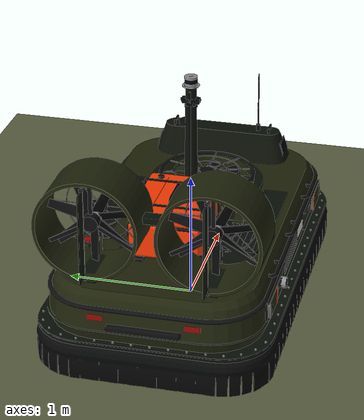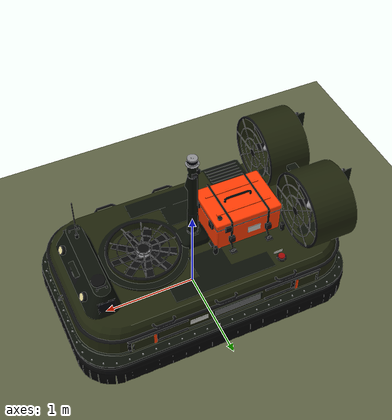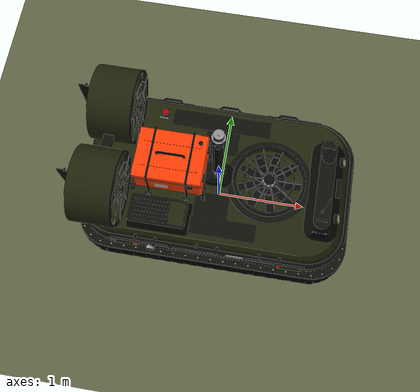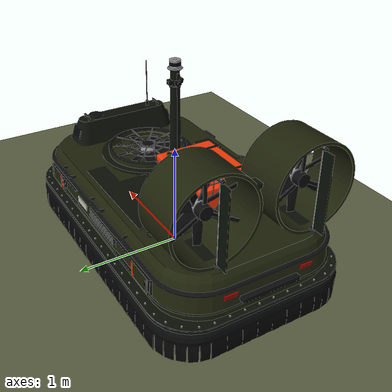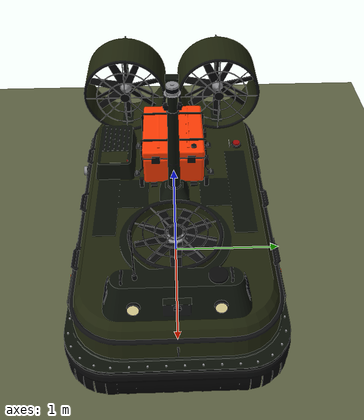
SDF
<?xml version="1.0"?>
<!-- GENERATED by hover_gazebo/scripts/gen_test_worlds_v3.py -->
<sdf version="1.9">
  <world name="v3_hover_test">
    <physics name="1ms" type="dart">
      <max_step_size>0.001</max_step_size>
      <real_time_factor>1.0</real_time_factor>
      <dart><collision_detector>bullet</collision_detector></dart>
    </physics>
    <gravity>0 0 -9.81</gravity>
    <spherical_coordinates>
      <surface_model>EARTH_WGS84</surface_model>
      <latitude_deg>1.4466</latitude_deg><longitude_deg>103.7300</longitude_deg>
      <elevation>0</elevation><heading_deg>0</heading_deg>
    </spherical_coordinates>

    <plugin filename="gz-sim-physics-system" name="gz::sim::systems::Physics"/>
    <plugin filename="gz-sim-user-commands-system" name="gz::sim::systems::UserCommands"/>
    <plugin filename="gz-sim-scene-broadcaster-system" name="gz::sim::systems::SceneBroadcaster"/>
    <plugin filename="gz-sim-imu-system" name="gz::sim::systems::Imu"/>
    <plugin filename="gz-sim-navsat-system" name="gz::sim::systems::NavSat"/>
    <plugin filename="gz-sim-sensors-system" name="gz::sim::systems::Sensors">
      <render_engine>ogre2</render_engine>
    </plugin>
    <plugin filename="tidal_vehicle_plugins" name="hover::TerrainZones">
      <ground_height>0.0</ground_height>
    </plugin>
    <plugin filename="tidal_vehicle_plugins" name="hover::ScriptedCommands">
      <command><time>0.5</time><topic>/model/hovercraft_v3/hover_enabled</topic><type>gz.msgs.Boolean</type><data>data: true</data></command>
      <command><time>3.0</time><topic>/model/hovercraft_v3/tracks_cmd</topic><type>gz.msgs.Double</type><data>data: 0.250</data></command>
      <command><time>26.0</time><topic>/model/hovercraft_v3/cmd_vel_hover</topic><type>gz.msgs.Twist</type><data>linear { x: 2.0 } angular { z: 0.0 }</data></command>
      <command><time>26.2</time><topic>/model/hovercraft_v3/cmd_vel_hover</topic><type>gz.msgs.Twist</type><data>linear { x: 2.0 } angular { z: 0.0 }</data></command>
      <command><time>26.4</time><topic>/model/hovercraft_v3/cmd_vel_hover</topic><type>gz.msgs.Twist</type><data>linear { x: 2.0 } angular { z: 0.0 }</data></command>
      <command><time>26.6</time><topic>/model/hovercraft_v3/cmd_vel_hover</topic><type>gz.msgs.Twist</type><data>linear { x: 2.0 } angular { z: 0.0 }</data></command>
      <command><time>26.8</time><topic>/model/hovercraft_v3/cmd_vel_hover</topic><type>gz.msgs.Twist</type><data>linear { x: 2.0 } angular { z: 0.0 }</data></command>
      <command><time>27.0</time><topic>/model/hovercraft_v3/cmd_vel_hover</topic><type>gz.msgs.Twist</type><data>linear { x: 2.0 } angular { z: 0.0 }</data></command>
      <command><time>27.2</time><topic>/model/hovercraft_v3/cmd_vel_hover</topic><type>gz.msgs.Twist</type><data>linear { x: 2.0 } angular { z: 0.0 }</data></command>
      <command><time>27.4</time><topic>/model/hovercraft_v3/cmd_vel_hover</topic><type>gz.msgs.Twist</type><data>linear { x: 2.0 } angular { z: 0.0 }</data></command>
      <command><time>27.6</time><topic>/model/hovercraft_v3/cmd_vel_hover</topic><type>gz.msgs.Twist</type><data>linear { x: 2.0 } angular { z: 0.0 }</data></command>
      <command><time>27.8</time><topic>/model/hovercraft_v3/cmd_vel_hover</topic><type>gz.msgs.Twist</type><data>linear { x: 2.0 } angular { z: 0.0 }</data></command>
      <command><time>28.0</time><topic>/model/hovercraft_v3/cmd_vel_hover</topic><type>gz.msgs.Twist</type><data>linear { x: 2.0 } angular { z: 0.0 }</data></command>
      <command><time>28.2</time><topic>/model/hovercraft_v3/cmd_vel_hover</topic><type>gz.msgs.Twist</type><data>linear { x: 2.0 } angular { z: 0.0 }</data></command>
      <command><time>28.4</time><topic>/model/hovercraft_v3/cmd_vel_hover</topic><type>gz.msgs.Twist</type><data>linear { x: 2.0 } angular { z: 0.0 }</data></command>
      <command><time>28.6</time><topic>/model/hovercraft_v3/cmd_vel_hover</topic><type>gz.msgs.Twist</type><data>linear { x: 2.0 } angular { z: 0.0 }</data></command>
      <command><time>28.8</time><topic>/model/hovercraft_v3/cmd_vel_hover</topic><type>gz.msgs.Twist</type><data>linear { x: 2.0 } angular { z: 0.0 }</data></command>
      <command><time>29.0</time><topic>/model/hovercraft_v3/cmd_vel_hover</topic><type>gz.msgs.Twist</type><data>linear { x: 2.0 } angular { z: 0.0 }</data></command>
      <command><time>29.2</time><topic>/model/hovercraft_v3/cmd_vel_hover</topic><type>gz.msgs.Twist</type><data>linear { x: 2.0 } angular { z: 0.0 }</data></command>
      <command><time>29.4</time><topic>/model/hovercraft_v3/cmd_vel_hover</topic><type>gz.msgs.Twist</type><data>linear { x: 2.0 } angular { z: 0.0 }</data></command>
      <command><time>29.6</time><topic>/model/hovercraft_v3/cmd_vel_hover</topic><type>gz.msgs.Twist</type><data>linear { x: 2.0 } angular { z: 0.0 }</data></command>
      <command><time>29.8</time><topic>/model/hovercraft_v3/cmd_vel_hover</topic><type>gz.msgs.Twist</type><data>linear { x: 2.0 } angular { z: 0.0 }</data></command>
      <command><time>30.0</time><topic>/model/hovercraft_v3/cmd_vel_hover</topic><type>gz.msgs.Twist</type><data>linear { x: 2.0 } angular { z: 0.0 }</data></command>
      <command><time>30.2</time><topic>/model/hovercraft_v3/cmd_vel_hover</topic><type>gz.msgs.Twist</type><data>linear { x: 2.0 } angular { z: 0.0 }</data></command>
      <command><time>30.4</time><topic>/model/hovercraft_v3/cmd_vel_hover</topic><type>gz.msgs.Twist</type><data>linear { x: 2.0 } angular { z: 0.0 }</data></command>
      <command><time>30.6</time><topic>/model/hovercraft_v3/cmd_vel_hover</topic><type>gz.msgs.Twist</type><data>linear { x: 2.0 } angular { z: 0.0 }</data></command>
      <command><time>30.8</time><topic>/model/hovercraft_v3/cmd_vel_hover</topic><type>gz.msgs.Twist</type><data>linear { x: 2.0 } angular { z: 0.0 }</data></command>
      <command><time>31.0</time><topic>/model/hovercraft_v3/cmd_vel_hover</topic><type>gz.msgs.Twist</type><data>linear { x: 2.0 } angular { z: 0.0 }</data></command>
      <command><time>31.2</time><topic>/model/hovercraft_v3/cmd_vel_hover</topic><type>gz.msgs.Twist</type><data>linear { x: 2.0 } angular { z: 0.0 }</data></command>
      <command><time>31.4</time><topic>/model/hovercraft_v3/cmd_vel_hover</topic><type>gz.msgs.Twist</type><data>linear { x: 2.0 } angular { z: 0.0 }</data></command>
      <command><time>31.6</time><topic>/model/hovercraft_v3/cmd_vel_hover</topic><type>gz.msgs.Twist</type><data>linear { x: 2.0 } angular { z: 0.0 }</data></command>
      <command><time>31.8</time><topic>/model/hovercraft_v3/cmd_vel_hover</topic><type>gz.msgs.Twist</type><data>linear { x: 2.0 } angular { z: 0.0 }</data></command>
      <command><time>32.0</time><topic>/model/hovercraft_v3/cmd_vel_hover</topic><type>gz.msgs.Twist</type><data>linear { x: 2.0 } angular { z: 0.0 }</data></command>
      <command><time>32.2</time><topic>/model/hovercraft_v3/cmd_vel_hover</topic><type>gz.msgs.Twist</type><data>linear { x: 2.0 } angular { z: 0.0 }</data></command>
      <command><time>32.4</time><topic>/model/hovercraft_v3/cmd_vel_hover</topic><type>gz.msgs.Twist</type><data>linear { x: 2.0 } angular { z: 0.0 }</data></command>
      <command><time>32.6</time><topic>/model/hovercraft_v3/cmd_vel_hover</topic><type>gz.msgs.Twist</type><data>linear { x: 2.0 } angular { z: 0.0 }</data></command>
      <command><time>32.8</time><topic>/model/hovercraft_v3/cmd_vel_hover</topic><type>gz.msgs.Twist</type><data>linear { x: 2.0 } angular { z: 0.0 }</data></command>
      <command><time>33.0</time><topic>/model/hovercraft_v3/cmd_vel_hover</topic><type>gz.msgs.Twist</type><data>linear { x: 2.0 } angular { z: 0.0 }</data></command>
      <command><time>33.2</time><topic>/model/hovercraft_v3/cmd_vel_hover</topic><type>gz.msgs.Twist</type><data>linear { x: 2.0 } angular { z: 0.0 }</data></command>
      <command><time>33.4</time><topic>/model/hovercraft_v3/cmd_vel_hover</topic><type>gz.msgs.Twist</type><data>linear { x: 2.0 } angular { z: 0.0 }</data></command>
      <command><time>33.6</time><topic>/model/hovercraft_v3/cmd_vel_hover</topic><type>gz.msgs.Twist</type><data>linear { x: 2.0 } angular { z: 0.0 }</data></command>
      <command><time>33.8</time><topic>/model/hovercraft_v3/cmd_vel_hover</topic><type>gz.msgs.Twist</type><data>linear { x: 2.0 } angular { z: 0.0 }</data></command>
      <command><time>34.0</time><topic>/model/hovercraft_v3/cmd_vel_hover</topic><type>gz.msgs.Twist</type><data>linear { x: 2.0 } angular { z: 0.0 }</data></command>
      <command><time>34.2</time><topic>/model/hovercraft_v3/cmd_vel_hover</topic><type>gz.msgs.Twist</type><data>linear { x: 2.0 } angular { z: 0.0 }</data></command>
      <command><time>34.4</time><topic>/model/hovercraft_v3/cmd_vel_hover</topic><type>gz.msgs.Twist</type><data>linear { x: 2.0 } angular { z: 0.0 }</data></command>
      <command><time>34.6</time><topic>/model/hovercraft_v3/cmd_vel_hover</topic><type>gz.msgs.Twist</type><data>linear { x: 2.0 } angular { z: 0.0 }</data></command>
      <command><time>34.8</time><topic>/model/hovercraft_v3/cmd_vel_hover</topic><type>gz.msgs.Twist</type><data>linear { x: 2.0 } angular { z: 0.0 }</data></command>
      <command><time>35.0</time><topic>/model/hovercraft_v3/cmd_vel_hover</topic><type>gz.msgs.Twist</type><data>linear { x: 2.0 } angular { z: 0.0 }</data></command>
      <command><time>35.2</time><topic>/model/hovercraft_v3/cmd_vel_hover</topic><type>gz.msgs.Twist</type><data>linear { x: 2.0 } angular { z: 0.0 }</data></command>
      <command><time>35.4</time><topic>/model/hovercraft_v3/cmd_vel_hover</topic><type>gz.msgs.Twist</type><data>linear { x: 2.0 } angular { z: 0.0 }</data></command>
      <command><time>35.6</time><topic>/model/hovercraft_v3/cmd_vel_hover</topic><type>gz.msgs.Twist</type><data>linear { x: 2.0 } angular { z: 0.0 }</data></command>
      <command><time>35.8</time><topic>/model/hovercraft_v3/cmd_vel_hover</topic><type>gz.msgs.Twist</type><data>linear { x: 2.0 } angular { z: 0.0 }</data></command>
      <command><time>36.0</time><topic>/model/hovercraft_v3/cmd_vel_hover</topic><type>gz.msgs.Twist</type><data>linear { x: 2.0 } angular { z: 0.0 }</data></command>
      <command><time>36.2</time><topic>/model/hovercraft_v3/cmd_vel_hover</topic><type>gz.msgs.Twist</type><data>linear { x: 2.0 } angular { z: 0.0 }</data></command>
      <command><time>36.4</time><topic>/model/hovercraft_v3/cmd_vel_hover</topic><type>gz.msgs.Twist</type><data>linear { x: 2.0 } angular { z: 0.0 }</data></command>
      <command><time>36.6</time><topic>/model/hovercraft_v3/cmd_vel_hover</topic><type>gz.msgs.Twist</type><data>linear { x: 2.0 } angular { z: 0.0 }</data></command>
      <command><time>36.8</time><topic>/model/hovercraft_v3/cmd_vel_hover</topic><type>gz.msgs.Twist</type><data>linear { x: 2.0 } angular { z: 0.0 }</data></command>
      <command><time>37.0</time><topic>/model/hovercraft_v3/cmd_vel_hover</topic><type>gz.msgs.Twist</type><data>linear { x: 2.0 } angular { z: 0.0 }</data></command>
      <command><time>37.2</time><topic>/model/hovercraft_v3/cmd_vel_hover</topic><type>gz.msgs.Twist</type><data>linear { x: 2.0 } angular { z: 0.0 }</data></command>
      <command><time>37.4</time><topic>/model/hovercraft_v3/cmd_vel_hover</topic><type>gz.msgs.Twist</type><data>linear { x: 2.0 } angular { z: 0.0 }</data></command>
      <command><time>37.6</time><topic>/model/hovercraft_v3/cmd_vel_hover</topic><type>gz.msgs.Twist</type><data>linear { x: 2.0 } angular { z: 0.0 }</data></command>
      <command><time>37.8</time><topic>/model/hovercraft_v3/cmd_vel_hover</topic><type>gz.msgs.Twist</type><data>linear { x: 2.0 } angular { z: 0.0 }</data></command>
      <command><time>38.0</time><topic>/model/hovercraft_v3/cmd_vel_hover</topic><type>gz.msgs.Twist</type><data>linear { x: 2.0 } angular { z: 0.0 }</data></command>
      <command><time>38.2</time><topic>/model/hovercraft_v3/cmd_vel_hover</topic><type>gz.msgs.Twist</type><data>linear { x: 2.0 } angular { z: 0.0 }</data></command>
      <command><time>38.4</time><topic>/model/hovercraft_v3/cmd_vel_hover</topic><type>gz.msgs.Twist</type><data>linear { x: 2.0 } angular { z: 0.0 }</data></command>
      <command><time>38.6</time><topic>/model/hovercraft_v3/cmd_vel_hover</topic><type>gz.msgs.Twist</type><data>linear { x: 2.0 } angular { z: 0.0 }</data></command>
      <command><time>38.8</time><topic>/model/hovercraft_v3/cmd_vel_hover</topic><type>gz.msgs.Twist</type><data>linear { x: 2.0 } angular { z: 0.0 }</data></command>
      <command><time>39.0</time><topic>/model/hovercraft_v3/cmd_vel_hover</topic><type>gz.msgs.Twist</type><data>linear { x: 2.0 } angular { z: 0.0 }</data></command>
      <command><time>39.2</time><topic>/model/hovercraft_v3/cmd_vel_hover</topic><type>gz.msgs.Twist</type><data>linear { x: 2.0 } angular { z: 0.0 }</data></command>
      <command><time>39.4</time><topic>/model/hovercraft_v3/cmd_vel_hover</topic><type>gz.msgs.Twist</type><data>linear { x: 2.0 } angular { z: 0.0 }</data></command>
      <command><time>39.6</time><topic>/model/hovercraft_v3/cmd_vel_hover</topic><type>gz.msgs.Twist</type><data>linear { x: 2.0 } angular { z: 0.0 }</data></command>
      <command><time>39.8</time><topic>/model/hovercraft_v3/cmd_vel_hover</topic><type>gz.msgs.Twist</type><data>linear { x: 2.0 } angular { z: 0.0 }</data></command>
      <command><time>40.0</time><topic>/model/hovercraft_v3/cmd_vel_hover</topic><type>gz.msgs.Twist</type><data>linear { x: 1.0 } angular { z: 0.5 }</data></command>
      <command><time>40.2</time><topic>/model/hovercraft_v3/cmd_vel_hover</topic><type>gz.msgs.Twist</type><data>linear { x: 1.0 } angular { z: 0.5 }</data></command>
      <command><time>40.4</time><topic>/model/hovercraft_v3/cmd_vel_hover</topic><type>gz.msgs.Twist</type><data>linear { x: 1.0 } angular { z: 0.5 }</data></command>
      <command><time>40.6</time><topic>/model/hovercraft_v3/cmd_vel_hover</topic><type>gz.msgs.Twist</type><data>linear { x: 1.0 } angular { z: 0.5 }</data></command>
      <command><time>40.8</time><topic>/model/hovercraft_v3/cmd_vel_hover</topic><type>gz.msgs.Twist</type><data>linear { x: 1.0 } angular { z: 0.5 }</data></command>
      <command><time>41.0</time><topic>/model/hovercraft_v3/cmd_vel_hover</topic><type>gz.msgs.Twist</type><data>linear { x: 1.0 } angular { z: 0.5 }</data></command>
      <command><time>41.2</time><topic>/model/hovercraft_v3/cmd_vel_hover</topic><type>gz.msgs.Twist</type><data>linear { x: 1.0 } angular { z: 0.5 }</data></command>
      <command><time>41.4</time><topic>/model/hovercraft_v3/cmd_vel_hover</topic><type>gz.msgs.Twist</type><data>linear { x: 1.0 } angular { z: 0.5 }</data></command>
      <command><time>41.6</time><topic>/model/hovercraft_v3/cmd_vel_hover</topic><type>gz.msgs.Twist</type><data>linear { x: 1.0 } angular { z: 0.5 }</data></command>
      <command><time>41.8</time><topic>/model/hovercraft_v3/cmd_vel_hover</topic><type>gz.msgs.Twist</type><data>linear { x: 1.0 } angular { z: 0.5 }</data></command>
      <command><time>42.0</time><topic>/model/hovercraft_v3/cmd_vel_hover</topic><type>gz.msgs.Twist</type><data>linear { x: 1.0 } angular { z: 0.5 }</data></command>
      <command><time>42.2</time><topic>/model/hovercraft_v3/cmd_vel_hover</topic><type>gz.msgs.Twist</type><data>linear { x: 1.0 } angular { z: 0.5 }</data></command>
      <command><time>42.4</time><topic>/model/hovercraft_v3/cmd_vel_hover</topic><type>gz.msgs.Twist</type><data>linear { x: 1.0 } angular { z: 0.5 }</data></command>
      <command><time>42.6</time><topic>/model/hovercraft_v3/cmd_vel_hover</topic><type>gz.msgs.Twist</type><data>linear { x: 1.0 } angular { z: 0.5 }</data></command>
      <command><time>42.8</time><topic>/model/hovercraft_v3/cmd_vel_hover</topic><type>gz.msgs.Twist</type><data>linear { x: 1.0 } angular { z: 0.5 }</data></command>
      <command><time>43.0</time><topic>/model/hovercraft_v3/cmd_vel_hover</topic><type>gz.msgs.Twist</type><data>linear { x: 1.0 } angular { z: 0.5 }</data></command>
      <command><time>43.2</time><topic>/model/hovercraft_v3/cmd_vel_hover</topic><type>gz.msgs.Twist</type><data>linear { x: 1.0 } angular { z: 0.5 }</data></command>
      <command><time>43.4</time><topic>/model/hovercraft_v3/cmd_vel_hover</topic><type>gz.msgs.Twist</type><data>linear { x: 1.0 } angular { z: 0.5 }</data></command>
      <command><time>43.6</time><topic>/model/hovercraft_v3/cmd_vel_hover</topic><type>gz.msgs.Twist</type><data>linear { x: 1.0 } angular { z: 0.5 }</data></command>
      <command><time>43.8</time><topic>/model/hovercraft_v3/cmd_vel_hover</topic><type>gz.msgs.Twist</type><data>linear { x: 1.0 } angular { z: 0.5 }</data></command>
      <command><time>44.0</time><topic>/model/hovercraft_v3/cmd_vel_hover</topic><type>gz.msgs.Twist</type><data>linear { x: 1.0 } angular { z: 0.5 }</data></command>
      <command><time>44.2</time><topic>/model/hovercraft_v3/cmd_vel_hover</topic><type>gz.msgs.Twist</type><data>linear { x: 1.0 } angular { z: 0.5 }</data></command>
      <command><time>44.4</time><topic>/model/hovercraft_v3/cmd_vel_hover</topic><type>gz.msgs.Twist</type><data>linear { x: 1.0 } angular { z: 0.5 }</data></command>
      <command><time>44.6</time><topic>/model/hovercraft_v3/cmd_vel_hover</topic><type>gz.msgs.Twist</type><data>linear { x: 1.0 } angular { z: 0.5 }</data></command>
      <command><time>44.8</time><topic>/model/hovercraft_v3/cmd_vel_hover</topic><type>gz.msgs.Twist</type><data>linear { x: 1.0 } angular { z: 0.5 }</data></command>
      <command><time>45.0</time><topic>/model/hovercraft_v3/cmd_vel_hover</topic><type>gz.msgs.Twist</type><data>linear { x: 1.0 } angular { z: 0.5 }</data></command>
      <command><time>45.2</time><topic>/model/hovercraft_v3/cmd_vel_hover</topic><type>gz.msgs.Twist</type><data>linear { x: 1.0 } angular { z: 0.5 }</data></command>
      <command><time>45.4</time><topic>/model/hovercraft_v3/cmd_vel_hover</topic><type>gz.msgs.Twist</type><data>linear { x: 1.0 } angular { z: 0.5 }</data></command>
      <command><time>45.6</time><topic>/model/hovercraft_v3/cmd_vel_hover</topic><type>gz.msgs.Twist</type><data>linear { x: 1.0 } angular { z: 0.5 }</data></command>
      <command><time>45.8</time><topic>/model/hovercraft_v3/cmd_vel_hover</topic><type>gz.msgs.Twist</type><data>linear { x: 1.0 } angular { z: 0.5 }</data></command>
      <command><time>46.0</time><topic>/model/hovercraft_v3/cmd_vel_hover</topic><type>gz.msgs.Twist</type><data>linear { x: 1.0 } angular { z: 0.5 }</data></command>
      <command><time>46.2</time><topic>/model/hovercraft_v3/cmd_vel_hover</topic><type>gz.msgs.Twist</type><data>linear { x: 1.0 } angular { z: 0.5 }</data></command>
      <command><time>46.4</time><topic>/model/hovercraft_v3/cmd_vel_hover</topic><type>gz.msgs.Twist</type><data>linear { x: 1.0 } angular { z: 0.5 }</data></command>
      <command><time>46.6</time><topic>/model/hovercraft_v3/cmd_vel_hover</topic><type>gz.msgs.Twist</type><data>linear { x: 1.0 } angular { z: 0.5 }</data></command>
      <command><time>46.8</time><topic>/model/hovercraft_v3/cmd_vel_hover</topic><type>gz.msgs.Twist</type><data>linear { x: 1.0 } angular { z: 0.5 }</data></command>
      <command><time>47.0</time><topic>/model/hovercraft_v3/cmd_vel_hover</topic><type>gz.msgs.Twist</type><data>linear { x: 1.0 } angular { z: 0.5 }</data></command>
      <command><time>47.2</time><topic>/model/hovercraft_v3/cmd_vel_hover</topic><type>gz.msgs.Twist</type><data>linear { x: 1.0 } angular { z: 0.5 }</data></command>
      <command><time>47.4</time><topic>/model/hovercraft_v3/cmd_vel_hover</topic><type>gz.msgs.Twist</type><data>linear { x: 1.0 } angular { z: 0.5 }</data></command>
      <command><time>47.6</time><topic>/model/hovercraft_v3/cmd_vel_hover</topic><type>gz.msgs.Twist</type><data>linear { x: 1.0 } angular { z: 0.5 }</data></command>
      <command><time>47.8</time><topic>/model/hovercraft_v3/cmd_vel_hover</topic><type>gz.msgs.Twist</type><data>linear { x: 1.0 } angular { z: 0.5 }</data></command>
      <command><time>48.0</time><topic>/model/hovercraft_v3/cmd_vel_hover</topic><type>gz.msgs.Twist</type><data>linear { x: 1.0 } angular { z: 0.5 }</data></command>
      <command><time>48.2</time><topic>/model/hovercraft_v3/cmd_vel_hover</topic><type>gz.msgs.Twist</type><data>linear { x: 1.0 } angular { z: 0.5 }</data></command>
      <command><time>48.4</time><topic>/model/hovercraft_v3/cmd_vel_hover</topic><type>gz.msgs.Twist</type><data>linear { x: 1.0 } angular { z: 0.5 }</data></command>
      <command><time>48.6</time><topic>/model/hovercraft_v3/cmd_vel_hover</topic><type>gz.msgs.Twist</type><data>linear { x: 1.0 } angular { z: 0.5 }</data></command>
      <command><time>48.8</time><topic>/model/hovercraft_v3/cmd_vel_hover</topic><type>gz.msgs.Twist</type><data>linear { x: 1.0 } angular { z: 0.5 }</data></command>
      <command><time>49.0</time><topic>/model/hovercraft_v3/cmd_vel_hover</topic><type>gz.msgs.Twist</type><data>linear { x: 1.0 } angular { z: 0.5 }</data></command>
      <command><time>49.2</time><topic>/model/hovercraft_v3/cmd_vel_hover</topic><type>gz.msgs.Twist</type><data>linear { x: 1.0 } angular { z: 0.5 }</data></command>
      <command><time>49.4</time><topic>/model/hovercraft_v3/cmd_vel_hover</topic><type>gz.msgs.Twist</type><data>linear { x: 1.0 } angular { z: 0.5 }</data></command>
      <command><time>49.6</time><topic>/model/hovercraft_v3/cmd_vel_hover</topic><type>gz.msgs.Twist</type><data>linear { x: 1.0 } angular { z: 0.5 }</data></command>
      <command><time>49.8</time><topic>/model/hovercraft_v3/cmd_vel_hover</topic><type>gz.msgs.Twist</type><data>linear { x: 1.0 } angular { z: 0.5 }</data></command>
      <command><time>50.0</time><topic>/model/hovercraft_v3/cmd_vel_hover</topic><type>gz.msgs.Twist</type><data>linear { x: 1.0 } angular { z: 0.5 }</data></command>
      <command><time>50.2</time><topic>/model/hovercraft_v3/cmd_vel_hover</topic><type>gz.msgs.Twist</type><data>linear { x: 1.0 } angular { z: 0.5 }</data></command>
      <command><time>50.4</time><topic>/model/hovercraft_v3/cmd_vel_hover</topic><type>gz.msgs.Twist</type><data>linear { x: 1.0 } angular { z: 0.5 }</data></command>
      <command><time>50.6</time><topic>/model/hovercraft_v3/cmd_vel_hover</topic><type>gz.msgs.Twist</type><data>linear { x: 1.0 } angular { z: 0.5 }</data></command>
      <command><time>50.8</time><topic>/model/hovercraft_v3/cmd_vel_hover</topic><type>gz.msgs.Twist</type><data>linear { x: 1.0 } angular { z: 0.5 }</data></command>
      <command><time>51.0</time><topic>/model/hovercraft_v3/cmd_vel_hover</topic><type>gz.msgs.Twist</type><data>linear { x: 1.0 } angular { z: 0.5 }</data></command>
      <command><time>51.2</time><topic>/model/hovercraft_v3/cmd_vel_hover</topic><type>gz.msgs.Twist</type><data>linear { x: 1.0 } angular { z: 0.5 }</data></command>
      <command><time>51.4</time><topic>/model/hovercraft_v3/cmd_vel_hover</topic><type>gz.msgs.Twist</type><data>linear { x: 1.0 } angular { z: 0.5 }</data></command>
      <command><time>51.6</time><topic>/model/hovercraft_v3/cmd_vel_hover</topic><type>gz.msgs.Twist</type><data>linear { x: 1.0 } angular { z: 0.5 }</data></command>
      <command><time>51.8</time><topic>/model/hovercraft_v3/cmd_vel_hover</topic><type>gz.msgs.Twist</type><data>linear { x: 1.0 } angular { z: 0.5 }</data></command>
      <command><time>52.0</time><topic>/model/hovercraft_v3/cmd_vel_hover</topic><type>gz.msgs.Twist</type><data>linear { x: 0.0 } angular { z: 0.0 }</data></command>
      <command><time>52.2</time><topic>/model/hovercraft_v3/cmd_vel_hover</topic><type>gz.msgs.Twist</type><data>linear { x: 0.0 } angular { z: 0.0 }</data></command>
      <command><time>52.4</time><topic>/model/hovercraft_v3/cmd_vel_hover</topic><type>gz.msgs.Twist</type><data>linear { x: 0.0 } angular { z: 0.0 }</data></command>
      <command><time>52.6</time><topic>/model/hovercraft_v3/cmd_vel_hover</topic><type>gz.msgs.Twist</type><data>linear { x: 0.0 } angular { z: 0.0 }</data></command>
      <command><time>52.8</time><topic>/model/hovercraft_v3/cmd_vel_hover</topic><type>gz.msgs.Twist</type><data>linear { x: 0.0 } angular { z: 0.0 }</data></command>
      <command><time>53.0</time><topic>/model/hovercraft_v3/cmd_vel_hover</topic><type>gz.msgs.Twist</type><data>linear { x: 0.0 } angular { z: 0.0 }</data></command>
      <command><time>53.2</time><topic>/model/hovercraft_v3/cmd_vel_hover</topic><type>gz.msgs.Twist</type><data>linear { x: 0.0 } angular { z: 0.0 }</data></command>
      <command><time>53.4</time><topic>/model/hovercraft_v3/cmd_vel_hover</topic><type>gz.msgs.Twist</type><data>linear { x: 0.0 } angular { z: 0.0 }</data></command>
      <command><time>53.6</time><topic>/model/hovercraft_v3/cmd_vel_hover</topic><type>gz.msgs.Twist</type><data>linear { x: 0.0 } angular { z: 0.0 }</data></command>
      <command><time>53.8</time><topic>/model/hovercraft_v3/cmd_vel_hover</topic><type>gz.msgs.Twist</type><data>linear { x: 0.0 } angular { z: 0.0 }</data></command>
      <command><time>54.0</time><topic>/model/hovercraft_v3/cmd_vel_hover</topic><type>gz.msgs.Twist</type><data>linear { x: 0.0 } angular { z: 0.0 }</data></command>
      <command><time>54.2</time><topic>/model/hovercraft_v3/cmd_vel_hover</topic><type>gz.msgs.Twist</type><data>linear { x: 0.0 } angular { z: 0.0 }</data></command>
      <command><time>54.4</time><topic>/model/hovercraft_v3/cmd_vel_hover</topic><type>gz.msgs.Twist</type><data>linear { x: 0.0 } angular { z: 0.0 }</data></command>
      <command><time>54.6</time><topic>/model/hovercraft_v3/cmd_vel_hover</topic><type>gz.msgs.Twist</type><data>linear { x: 0.0 } angular { z: 0.0 }</data></command>
      <command><time>54.8</time><topic>/model/hovercraft_v3/cmd_vel_hover</topic><type>gz.msgs.Twist</type><data>linear { x: 0.0 } angular { z: 0.0 }</data></command>
      <command><time>55.0</time><topic>/model/hovercraft_v3/cmd_vel_hover</topic><type>gz.msgs.Twist</type><data>linear { x: 0.0 } angular { z: 0.0 }</data></command>
      <command><time>55.2</time><topic>/model/hovercraft_v3/cmd_vel_hover</topic><type>gz.msgs.Twist</type><data>linear { x: 0.0 } angular { z: 0.0 }</data></command>
      <command><time>55.4</time><topic>/model/hovercraft_v3/cmd_vel_hover</topic><type>gz.msgs.Twist</type><data>linear { x: 0.0 } angular { z: 0.0 }</data></command>
      <command><time>55.6</time><topic>/model/hovercraft_v3/cmd_vel_hover</topic><type>gz.msgs.Twist</type><data>linear { x: 0.0 } angular { z: 0.0 }</data></command>
      <command><time>55.8</time><topic>/model/hovercraft_v3/cmd_vel_hover</topic><type>gz.msgs.Twist</type><data>linear { x: 0.0 } angular { z: 0.0 }</data></command>
      <command><time>56.0</time><topic>/model/hovercraft_v3/cmd_vel_hover</topic><type>gz.msgs.Twist</type><data>linear { x: 0.0 } angular { z: 0.0 }</data></command>
      <command><time>56.2</time><topic>/model/hovercraft_v3/cmd_vel_hover</topic><type>gz.msgs.Twist</type><data>linear { x: 0.0 } angular { z: 0.0 }</data></command>
      <command><time>56.4</time><topic>/model/hovercraft_v3/cmd_vel_hover</topic><type>gz.msgs.Twist</type><data>linear { x: 0.0 } angular { z: 0.0 }</data></command>
      <command><time>56.6</time><topic>/model/hovercraft_v3/cmd_vel_hover</topic><type>gz.msgs.Twist</type><data>linear { x: 0.0 } angular { z: 0.0 }</data></command>
      <command><time>56.8</time><topic>/model/hovercraft_v3/cmd_vel_hover</topic><type>gz.msgs.Twist</type><data>linear { x: 0.0 } angular { z: 0.0 }</data></command>
      <command><time>57.0</time><topic>/model/hovercraft_v3/cmd_vel_hover</topic><type>gz.msgs.Twist</type><data>linear { x: 0.0 } angular { z: 0.0 }</data></command>
      <command><time>57.2</time><topic>/model/hovercraft_v3/cmd_vel_hover</topic><type>gz.msgs.Twist</type><data>linear { x: 0.0 } angular { z: 0.0 }</data></command>
      <command><time>57.4</time><topic>/model/hovercraft_v3/cmd_vel_hover</topic><type>gz.msgs.Twist</type><data>linear { x: 0.0 } angular { z: 0.0 }</data></command>
      <command><time>57.6</time><topic>/model/hovercraft_v3/cmd_vel_hover</topic><type>gz.msgs.Twist</type><data>linear { x: 0.0 } angular { z: 0.0 }</data></command>
      <command><time>57.8</time><topic>/model/hovercraft_v3/cmd_vel_hover</topic><type>gz.msgs.Twist</type><data>linear { x: 0.0 } angular { z: 0.0 }</data></command>
      <command><time>58.0</time><topic>/model/hovercraft_v3/cmd_vel_hover</topic><type>gz.msgs.Twist</type><data>linear { x: 0.0 } angular { z: 0.0 }</data></command>
      <command><time>58.2</time><topic>/model/hovercraft_v3/cmd_vel_hover</topic><type>gz.msgs.Twist</type><data>linear { x: 0.0 } angular { z: 0.0 }</data></command>
      <command><time>58.4</time><topic>/model/hovercraft_v3/cmd_vel_hover</topic><type>gz.msgs.Twist</type><data>linear { x: 0.0 } angular { z: 0.0 }</data></command>
      <command><time>58.6</time><topic>/model/hovercraft_v3/cmd_vel_hover</topic><type>gz.msgs.Twist</type><data>linear { x: 0.0 } angular { z: 0.0 }</data></command>
      <command><time>58.8</time><topic>/model/hovercraft_v3/cmd_vel_hover</topic><type>gz.msgs.Twist</type><data>linear { x: 0.0 } angular { z: 0.0 }</data></command>
      <command><time>59.0</time><topic>/model/hovercraft_v3/cmd_vel_hover</topic><type>gz.msgs.Twist</type><data>linear { x: 0.0 } angular { z: 0.0 }</data></command>
      <command><time>59.2</time><topic>/model/hovercraft_v3/cmd_vel_hover</topic><type>gz.msgs.Twist</type><data>linear { x: 0.0 } angular { z: 0.0 }</data></command>
      <command><time>59.4</time><topic>/model/hovercraft_v3/cmd_vel_hover</topic><type>gz.msgs.Twist</type><data>linear { x: 0.0 } angular { z: 0.0 }</data></command>
      <command><time>59.6</time><topic>/model/hovercraft_v3/cmd_vel_hover</topic><type>gz.msgs.Twist</type><data>linear { x: 0.0 } angular { z: 0.0 }</data></command>
      <command><time>59.8</time><topic>/model/hovercraft_v3/cmd_vel_hover</topic><type>gz.msgs.Twist</type><data>linear { x: 0.0 } angular { z: 0.0 }</data></command>
      <command><time>60.0</time><topic>/model/hovercraft_v3/cmd_vel_hover</topic><type>gz.msgs.Twist</type><data>linear { x: 0.0 } angular { z: 0.0 }</data></command>
      <command><time>60.2</time><topic>/model/hovercraft_v3/cmd_vel_hover</topic><type>gz.msgs.Twist</type><data>linear { x: 0.0 } angular { z: 0.0 }</data></command>
      <command><time>60.4</time><topic>/model/hovercraft_v3/cmd_vel_hover</topic><type>gz.msgs.Twist</type><data>linear { x: 0.0 } angular { z: 0.0 }</data></command>
      <command><time>60.6</time><topic>/model/hovercraft_v3/cmd_vel_hover</topic><type>gz.msgs.Twist</type><data>linear { x: 0.0 } angular { z: 0.0 }</data></command>
      <command><time>60.8</time><topic>/model/hovercraft_v3/cmd_vel_hover</topic><type>gz.msgs.Twist</type><data>linear { x: 0.0 } angular { z: 0.0 }</data></command>
      <command><time>61.0</time><topic>/model/hovercraft_v3/cmd_vel_hover</topic><type>gz.msgs.Twist</type><data>linear { x: 0.0 } angular { z: 0.0 }</data></command>
      <command><time>61.2</time><topic>/model/hovercraft_v3/cmd_vel_hover</topic><type>gz.msgs.Twist</type><data>linear { x: 0.0 } angular { z: 0.0 }</data></command>
      <command><time>61.4</time><topic>/model/hovercraft_v3/cmd_vel_hover</topic><type>gz.msgs.Twist</type><data>linear { x: 0.0 } angular { z: 0.0 }</data></command>
      <command><time>61.6</time><topic>/model/hovercraft_v3/cmd_vel_hover</topic><type>gz.msgs.Twist</type><data>linear { x: 0.0 } angular { z: 0.0 }</data></command>
      <command><time>61.8</time><topic>/model/hovercraft_v3/cmd_vel_hover</topic><type>gz.msgs.Twist</type><data>linear { x: 0.0 } angular { z: 0.0 }</data></command>
    </plugin>

    <scene><ambient>0.5 0.5 0.5 1</ambient><background>0.7 0.8 0.9 1</background><grid>false</grid></scene>
    <light type="directional" name="sun">
      <cast_shadows>true</cast_shadows><pose>0 0 10 0 0 0</pose>
      <diffuse>0.9 0.9 0.85 1</diffuse><specular>0.2 0.2 0.2 1</specular>
      <direction>-0.4 0.3 -0.9</direction>
    </light>

    <model name="ground">
      <static>true</static>
      <pose>50.0 0.0 -0.15 0 0 0</pose>
      <link name="link">
        <collision name="c">
          <geometry><box><size>140 120 0.3</size></box></geometry>
          <surface><friction><ode><mu>1.0</mu><mu2>1.0</mu2></ode></friction></surface>
        </collision>
        <visual name="v">
          <geometry><box><size>140 120 0.3</size></box></geometry>
          <material><ambient>0.36 0.38 0.26 1</ambient><diffuse>0.36 0.38 0.26 1</diffuse>
            <specular>0.05 0.05 0.05 1</specular></material>
        </visual>
      </link>
    </model>
    <include>
      <uri>model://hovercraft_v3</uri>
      <name>hovercraft_v3</name>
      <pose>0 0 0.002 0 0 0.0</pose>
    </include>
  </world>
</sdf>
